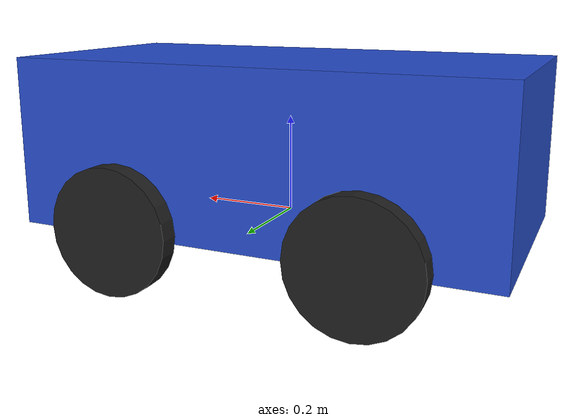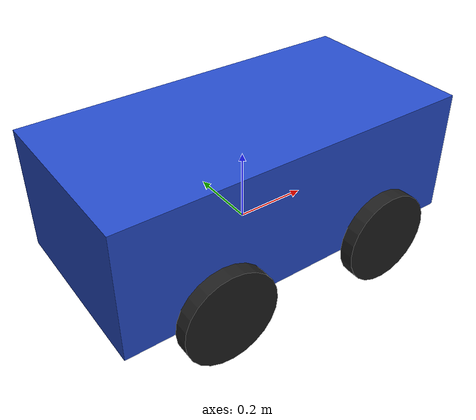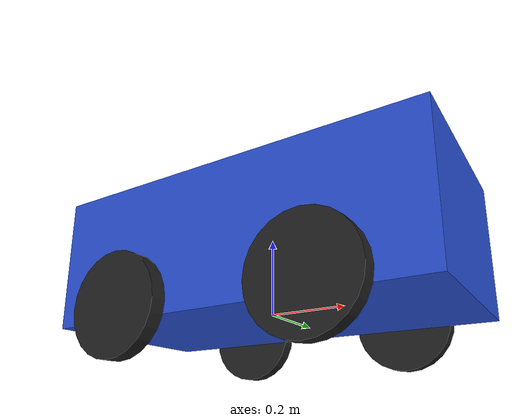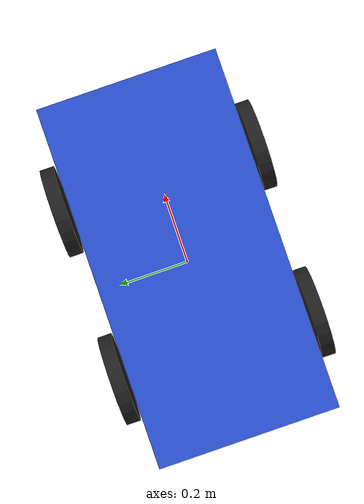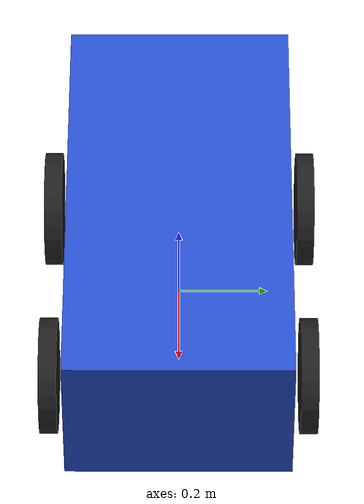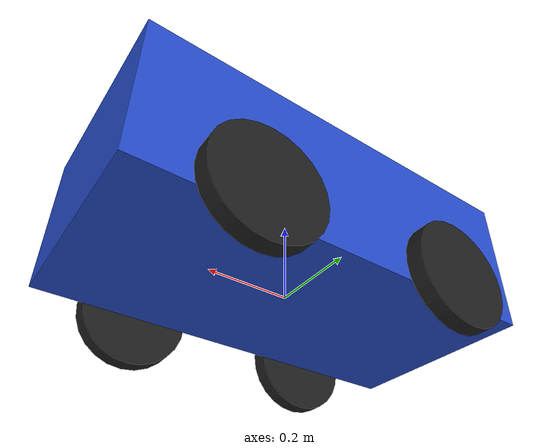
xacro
<?xml version='1.0'?>

<robot name="Rover" xmlns:xacro="http://www.ros.org/wiki/xacro">

  <xacro:include filename="$(find rover_description)/urdf/rover.gazebo" />
  <xacro:include filename="$(find rover_description)/urdf/materials.xacro"/>

  <link name='base_footprint'>
    <pose>0 0 0 0 0 0</pose>

    <inertial>
      <mass value="15.0"/>
      <origin xyz="0.0 0 0.1" rpy=" 0 0 0"/>
      <inertia
          ixx="0.1"
          ixy="0"
          ixz="0"
          iyy="0.1"
          iyz="0"
          izz="0.1"/>
    </inertial>

    <collision name='collision'>
      <origin xyz="0 0 0.15" rpy=" 0 0 0"/>
      <geometry>
        <box size= "1 0.5 0.35"/>
      </geometry>
    </collision>

    <visual name='base_footprint_visual'>
      <origin xyz="0 0 0.15" rpy=" 0 0 0"/>
      <geometry>

        <box size= "1 0.5 0.35"/>
      </geometry>
    </visual>
  </link>

  <link name="left_wheel_front">
    <collision name="collision">
      <origin xyz="0 0 0" rpy="0 1.5707 1.5707"/>
      <geometry>
        <cylinder radius="0.13" length="0.04"/>
      </geometry>
    </collision>

    <visual name="left_wheel_visual">
      <origin xyz="0 0 0" rpy="0 1.5707 1.5707"/>
      <geometry>
        <cylinder radius="0.13" length="0.04"/>
      </geometry>
    </visual>

    <inertial>
      <origin xyz="0 0 0" rpy="0 1.5707 1.5707"/>
      <mass value="5"/>
      <inertia
        ixx=".1" ixy="0.0" ixz="0.0"
        iyy=".1" iyz="0.0"
        izz=".1"/>
    </inertial>
  </link>

  <link name="right_wheel_front">
    <collision name="collision">
      <origin xyz="0 0 0" rpy="0 1.5707 1.5707"/>
      <geometry>
        <cylinder radius="0.13" length="0.04"/>
      </geometry>
    </collision>

    <visual name="right_wheel_visual">
      <origin xyz="0 0 0" rpy="0 1.5707 1.5707"/>
      <geometry>
        <cylinder radius="0.13" length="0.04"/>
      </geometry>
    </visual>

    <inertial>
      <origin xyz="0 0 0" rpy="0 1.5707 1.5707"/>
      <mass value="5"/>
      <inertia
        ixx=".1" ixy="0.0" ixz="0.0"
        iyy=".1" iyz="0.0"
        izz=".1"/>
    </inertial>
  </link>

  <link name="left_wheel_back">
    <collision name="collision">
      <origin xyz="0 0 0" rpy="0 1.5707 1.5707"/>
      <geometry>
        <cylinder radius="0.13" length="0.04"/>
      </geometry>
    </collision>

    <visual name="left_wheel_visual">
      <origin xyz="0 0 0" rpy="0 1.5707 1.5707"/>
      <geometry>
        <cylinder radius="0.13" length="0.04"/>
      </geometry>
    </visual>

    <inertial>
      <origin xyz="0 0 0" rpy="0 1.5707 1.5707"/>
      <mass value="0.1"/>
      <inertia
        ixx=".1" ixy="0.0" ixz="0.0"
        iyy=".1" iyz="0.0"
        izz=".1"/>
    </inertial>
  </link>

  <link name="right_wheel_back">
    <collision name="collision">
      <origin xyz="0 0 0" rpy="0 1.5707 1.5707"/>
      <geometry>
        <cylinder radius="0.13" length="0.04"/>
      </geometry>
    </collision>

    <visual name="right_wheel_visual">
      <origin xyz="0 0 0" rpy="0 1.5707 1.5707"/>
      <geometry>
        <cylinder radius="0.13" length="0.04"/>
      </geometry>
    </visual>

    <inertial>
      <origin xyz="0 0 0" rpy="0 1.5707 1.5707"/>
      <mass value="0.1"/>
      <inertia
        ixx=".1" ixy="0.0" ixz="0.0"
        iyy=".1" iyz="0.0"
        izz=".1"/>
    </inertial>
  </link>

  <joint type="continuous" name="left_wheel_front_hinge">
    <origin xyz="0.25 0.29 0" rpy="0 0 0"/>
    <child link="left_wheel_front"/>
    <parent link="base_footprint"/>
    <axis xyz="0 1 0" rpy="0 0 0"/>
    <limit effort="10000" velocity="1000"/>
    <joint_properties damping="1.0" friction="1.0"/>
  </joint>

  <joint type="continuous" name="right_wheel_front_hinge">
    <origin xyz="0.25 -0.29 0" rpy="0 0 0"/>
    <child link="right_wheel_front"/>
    <parent link="base_footprint"/>
    <axis xyz="0 1 0" rpy="0 0 0"/>
    <limit effort="10000" velocity="1000"/>
    <joint_properties damping="1.0" friction="1.0"/>
  </joint>

  <joint type="continuous" name="left_wheel_back_hinge">
    <origin xyz="-0.25 0.29 0" rpy="0 0 0"/>
    <child link="left_wheel_back"/>
    <parent link="base_footprint"/>
    <axis xyz="0 1 0" rpy="0 0 0"/>
    <limit effort="10000" velocity="1000"/>
    <joint_properties damping="1.0" friction="0"/>
  </joint>

  <joint type="continuous" name="right_wheel_back_hinge">
    <origin xyz="-0.25 -0.29 0" rpy="0 0 0"/>
    <child link="right_wheel_back"/>
    <parent link="base_footprint"/>
    <axis xyz="0 1 0" rpy="0 0 0"/>
    <limit effort="10000" velocity="1000"/>
    <joint_properties damping="1.0" friction="0"/>
  </joint>

</robot>
